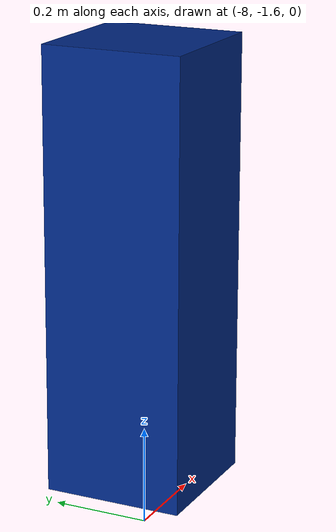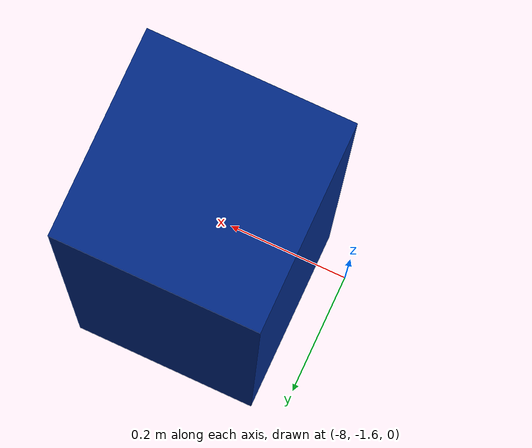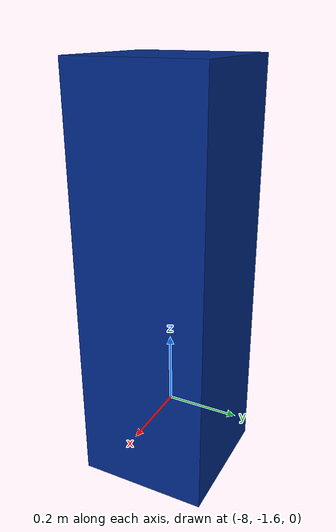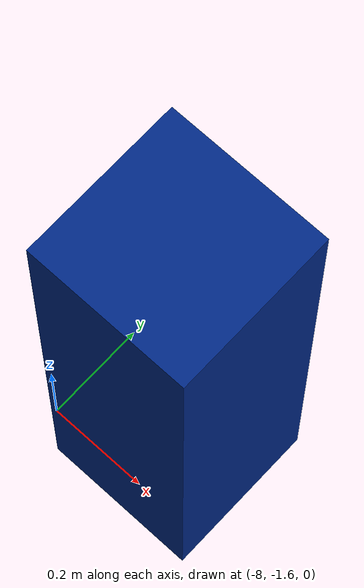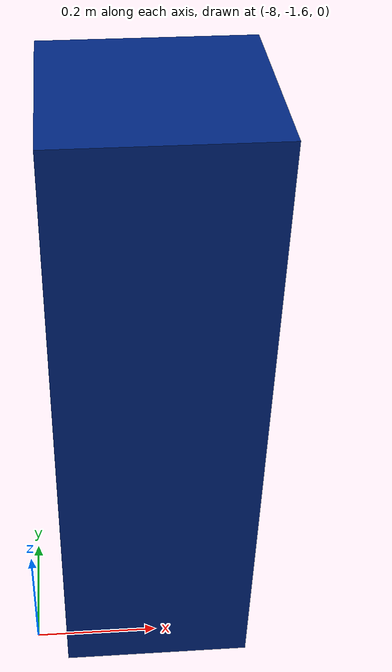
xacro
<?xml version="1.0" ?>
<robot name="robot2_pedestal" xmlns:xacro="http://www.ros.org/wiki/xacro">
  <xacro:arg name="pedestal_prefix" default="robot1"/>
  <xacro:arg name="pedestal_parent" default="world_interface"/>
  <xacro:arg name="pedestal_height" default="0.95"/>

  <link name="world_interface"/>
  <!-- URDF -->
  <xacro:include filename="$(find ros_industrial_support)/urdf/robot_pedestal/robot_pedestal.urdf.xacro"/>
  <xacro:robot_pedestal_urdf pedestal_prefix="$(arg pedestal_prefix)" pedestal_parent="$(arg pedestal_parent)" pedestal_height="$(arg pedestal_height)">
    <origin xyz="-7.8 -1.5 0.0" rpy="0 0 0"/>
  </xacro:robot_pedestal_urdf>

  <!-- Gazebo -->
  <xacro:include filename="$(find ros_industrial_support)/urdf/robot_pedestal/robot_pedestal.gazebo.xacro"/>
</robot>

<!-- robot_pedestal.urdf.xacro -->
<robot name="robot_pedestal_urdf" xmlns:xacro="http://www.ros.org/wiki/xacro">

<!-- robot pedestal -->
<xacro:macro name = "robot_pedestal_urdf" params = "pedestal_prefix pedestal_parent pedestal_height *origin">
  <joint name="${pedestal_prefix}pedestal_joint" type="fixed">
    <xacro:insert_block name="origin" />
    <parent link="${pedestal_parent}"/>
    <child link="${pedestal_prefix}pedestal_link"/>
  </joint>

  <link name="${pedestal_prefix}pedestal_link">
    <visual>
      <origin xyz="0 0 ${0.5*pedestal_height}"/>
      <geometry>
        <box size="0.3 0.3 ${pedestal_height}"/>
      </geometry>
      <material name="pedestal_color">
        <color rgba="0 ${40/255} ${134/255} 1"/>
      </material>
    </visual>

    <collision>
      <origin xyz="0 0 ${0.5*pedestal_height}"/>
      <geometry>
        <box size="0.3 0.3 ${pedestal_height}"/>
      </geometry>
    </collision>

    <inertial>
      <mass value="500"/>
      <origin xyz="0 0 0" rpy="0 0 0"/>
      <inertia ixx="0.001" ixy="0" ixz="0" iyy="0.001" iyz="0" izz="0.001"/>
    </inertial>
  </link>

  <gazebo reference="${pedestal_prefix}pedestal_link">
    <material>Gazebo/Blue</material>
  </gazebo>

</xacro:macro>

</robot>
